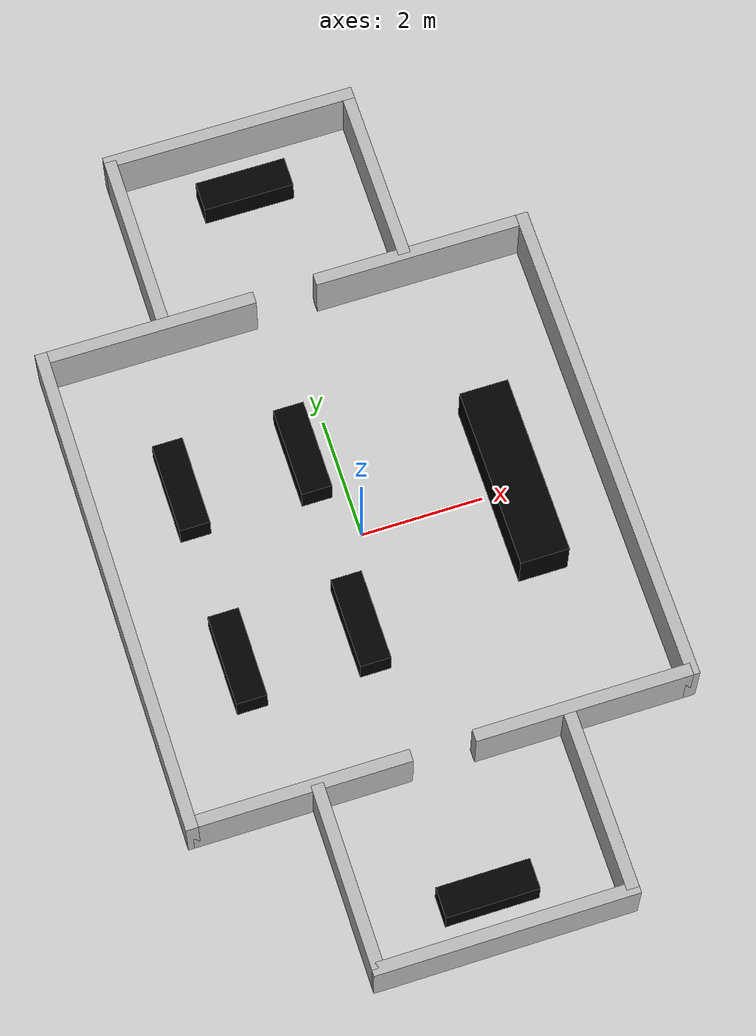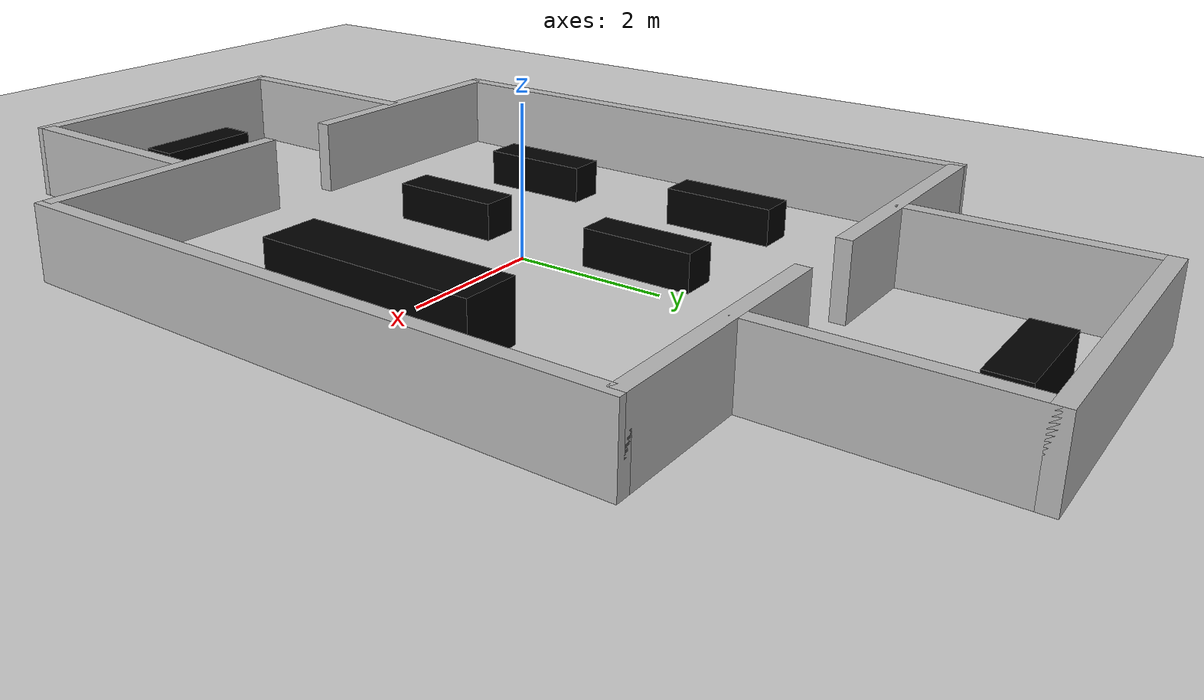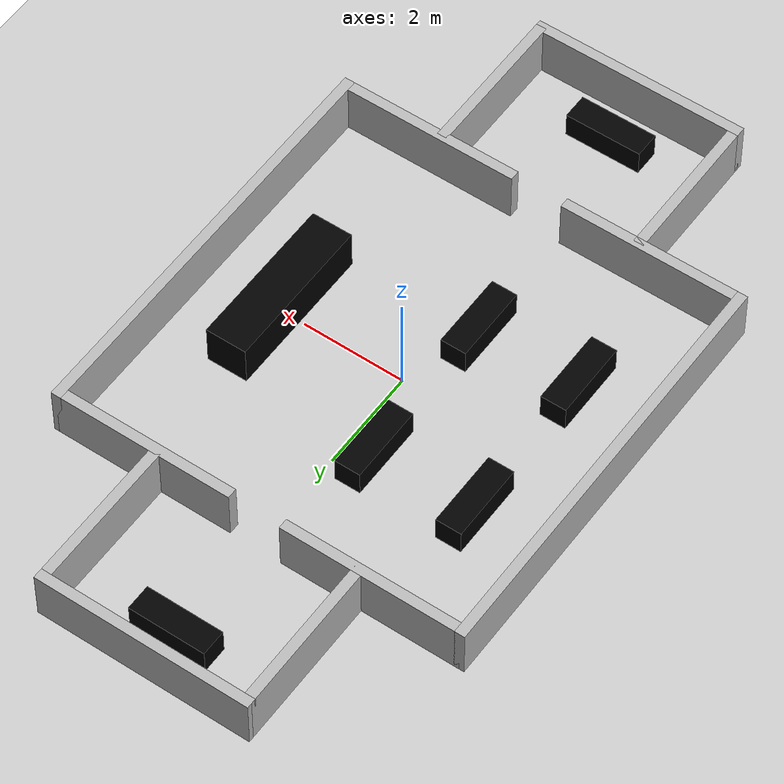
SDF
<sdf version="1.8">
 <world name="mini_terminal_final">
  <physics type="ode">
   <max_step_size>0.02</max_step_size>
   <real_time_update_rate>50</real_time_update_rate>
   <real_time_factor>1</real_time_factor>
   <ode><solver><type>quick</type><iters>30</iters><sor>1.3</sor></solver></ode>
  </physics>
  <scene>
   <shadows>false</shadows>
   <grid>false</grid>
   <ambient>0.6 0.6 0.6 1</ambient>
   <background>0.3 0.3 0.3 1</background>
  </scene>
  <plugin filename="gz-sim-physics-system" name="gz::sim::systems::Physics"/>
  <plugin filename="gz-sim-user-commands-system" name="gz::sim::systems::UserCommands"/>
  <plugin filename="gz-sim-scene-broadcaster-system" name="gz::sim::systems::SceneBroadcaster"/>
  <plugin filename="gz-sim-sensors-system" name="gz::sim::systems::Sensors">
   <render_engine>ogre2</render_engine>
  </plugin>
  <light type="directional" name="sun">
   <cast_shadows>false</cast_shadows>
   <pose>0 0 10 0 0 0</pose>
   <diffuse>0.8 0.8 0.8 1</diffuse>
   <specular>0.2 0.2 0.2 1</specular>
   <attenuation>
    <range>1000</range>
    <constant>0.9</constant>
    <linear>0.01</linear>
    <quadratic>0.001</quadratic>
   </attenuation>
   <direction>-0.5 0.1 -0.9</direction>
  </light>
  <include><uri>model://ground_plane</uri></include>
  <model name="terminal_structure">
   <static>true</static>
   <link name="walls">
    <visual name="wall_n">
     <pose>4 0 0.5 0 0 0</pose>
     <geometry><box><size>0.2 8.2 1</size></box></geometry>
    </visual>
    <collision name="wall_n_c">
     <pose>4 0 0.5 0 0 0</pose>
     <geometry><box><size>0.2 8.2 1</size></box></geometry>
    </collision>
    <visual name="wall_s">
     <pose>-4 0 0.5 0 0 0</pose>
     <geometry><box><size>0.2 8.2 1</size></box></geometry>
    </visual>
    <collision name="wall_s_c">
     <pose>-4 0 0.5 0 0 0</pose>
     <geometry><box><size>0.2 8.2 1</size></box></geometry>
    </collision>
    <visual name="lat_L_top">
     <pose>2.25 4 0.5 0 0 0</pose>
     <geometry><box><size>3.5 0.2 1</size></box></geometry>
    </visual>
    <visual name="lat_L_bot">
     <pose>-2.25 4 0.5 0 0 0</pose>
     <geometry><box><size>3.5 0.2 1</size></box></geometry>
    </visual>
    <visual name="lat_R_top">
     <pose>2.25 -4 0.5 0 0 0</pose>
     <geometry><box><size>3.5 0.2 1</size></box></geometry>
    </visual>
    <visual name="lat_R_bot">
     <pose>-2.25 -4 0.5 0 0 0</pose>
     <geometry><box><size>3.5 0.2 1</size></box></geometry>
    </visual>
    <visual name="counter">
     <pose>2.5 0 0.4 0 0 0</pose>
     <geometry><box><size>0.8 3 0.8</size></box></geometry>
     <material><ambient>0 0 0 1</ambient><diffuse>0 0 0 1</diffuse></material>
    </visual>
    <collision name="counter_c">
     <pose>2.5 0 0.4 0 0 0</pose>
     <geometry><box><size>0.8 3 0.8</size></box></geometry>
    </collision>
   </link>
  </model>
  <model name="room_left">
   <static>true</static>
   <pose>0 5.5 0 0 0 0</pose>
   <link name="walls">
    <visual name="w_outer">
     <pose>0 1.5 0.5 0 0 0</pose>
     <geometry><box><size>4.2 0.2 1</size></box></geometry>
    </visual>
    <visual name="w_side1"><pose>2 0 0.5 0 0 0</pose><geometry><box><size>0.2 3 1</size></box></geometry></visual>
    <visual name="w_side2">
     <pose>-2 0 0.5 0 0 0</pose>
     <geometry><box><size>0.2 3 1</size></box></geometry>
    </visual>
   </link>
  </model>
  <model name="room_right">
   <static>true</static>
   <pose>0 -5.5 0 0 0 0</pose>
   <link name="walls">
    <visual name="w_outer">
     <pose>0 -1.5 0.5 0 0 0</pose>
     <geometry><box><size>4.2 0.2 1</size></box></geometry>
    </visual>
    <visual name="w_side1"><pose>2 0 0.5 0 0 0</pose><geometry><box><size>0.2 3 1</size></box></geometry></visual>
    <visual name="w_side2">
     <pose>-2 0 0.5 0 0 0</pose>
     <geometry><box><size>0.2 3 1</size></box></geometry>
    </visual>
   </link>
  </model>
  <model name="chair_blockers">
   <static>true</static>
   <link name="link">
    <visual name="v_1">
     <pose>-0.5 1.5 0.25 0 0 0</pose>
     <geometry><box><size>0.5 1.5 0.5</size></box></geometry>
     <material><ambient>0 0 0 1</ambient><diffuse>0 0 0 1</diffuse></material>
    </visual>
    <collision name="c_1">
     <pose>-0.5 1.5 0.25 0 0 0</pose>
     <geometry><box><size>0.5 1.5 0.5</size></box></geometry>
    </collision>
    <visual name="v_2">
     <pose>-0.5 -1.5 0.25 0 0 0</pose>
     <geometry><box><size>0.5 1.5 0.5</size></box></geometry>
     <material><ambient>0 0 0 1</ambient><diffuse>0 0 0 1</diffuse></material>
    </visual>
    <collision name="c_2">
     <pose>-0.5 -1.5 0.25 0 0 0</pose>
     <geometry><box><size>0.5 1.5 0.5</size></box></geometry>
    </collision>
    <visual name="v_3">
     <pose>-2.5 1.5 0.25 0 0 0</pose>
     <geometry><box><size>0.5 1.5 0.5</size></box></geometry>
     <material><ambient>0 0 0 1</ambient><diffuse>0 0 0 1</diffuse></material>
    </visual>
    <collision name="c_3">
     <pose>-2.5 1.5 0.25 0 0 0</pose>
     <geometry><box><size>0.5 1.5 0.5</size></box></geometry>
    </collision>
    <visual name="v_4">
     <pose>-2.5 -1.5 0.25 0 0 0</pose>
     <geometry><box><size>0.5 1.5 0.5</size></box></geometry>
     <material><ambient>0 0 0 1</ambient><diffuse>0 0 0 1</diffuse></material>
    </visual>
    <collision name="c_4">
     <pose>-2.5 -1.5 0.25 0 0 0</pose>
     <geometry><box><size>0.5 1.5 0.5</size></box></geometry>
    </collision>
    <visual name="v_5">
     <pose>0 6.2 0.25 0 0 0</pose>
     <geometry><box><size>1.5 0.5 0.5</size></box></geometry>
     <material><ambient>0 0 0 1</ambient><diffuse>0 0 0 1</diffuse></material>
    </visual>
    <collision name="c_5">
     <pose>0 6.2 0.25 0 0 0</pose>
     <geometry><box><size>1.5 0.5 0.5</size></box></geometry>
    </collision>
    <visual name="v_6">
     <pose>0 -6.2 0.25 0 0 0</pose>
     <geometry><box><size>1.5 0.5 0.5</size></box></geometry>
     <material><ambient>0 0 0 1</ambient><diffuse>0 0 0 1</diffuse></material>
    </visual>
    <collision name="c_6">
     <pose>0 -6.2 0.25 0 0 0</pose>
     <geometry><box><size>1.5 0.5 0.5</size></box></geometry>
    </collision>
   </link>
  </model>
 </world>
</sdf>
